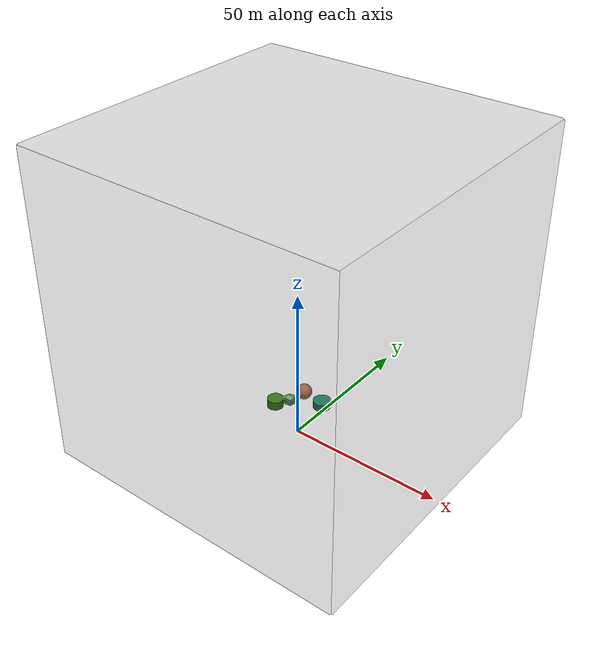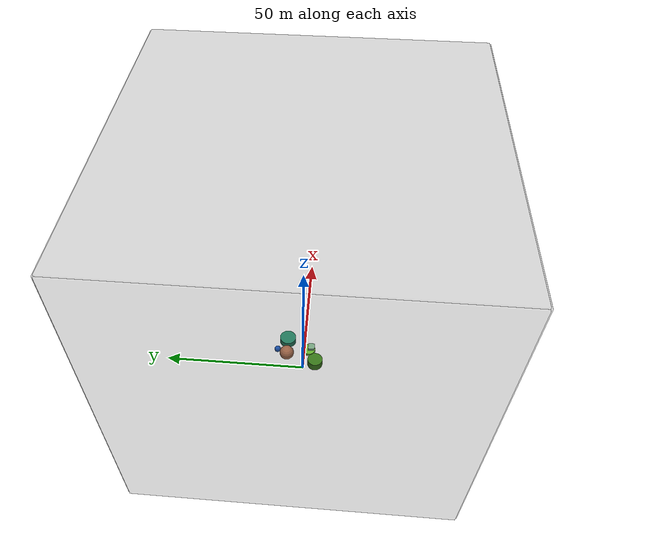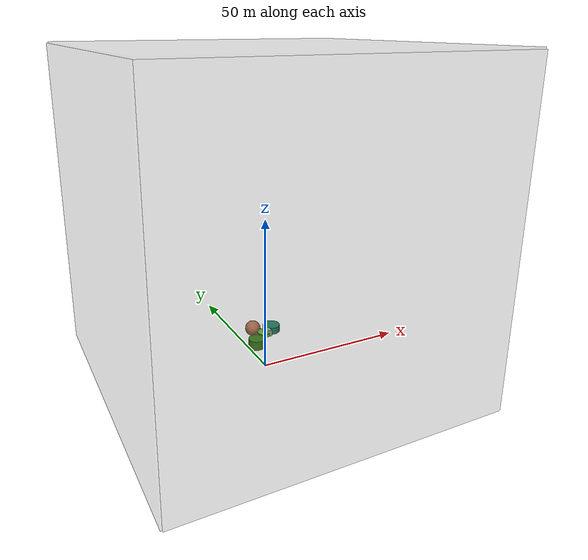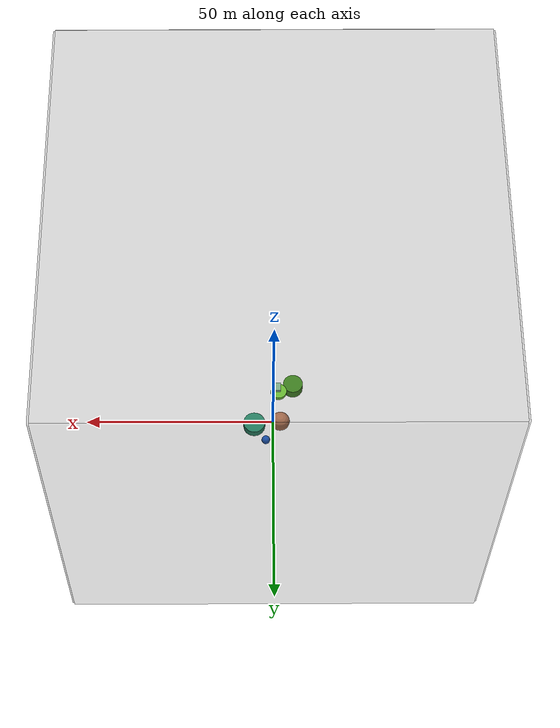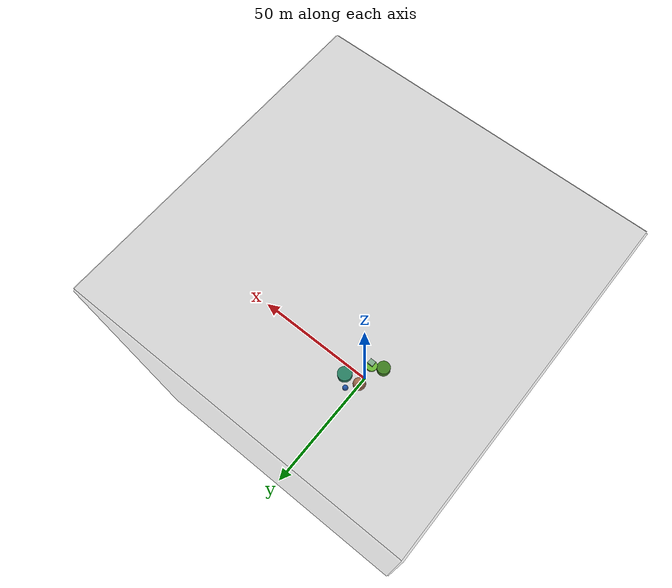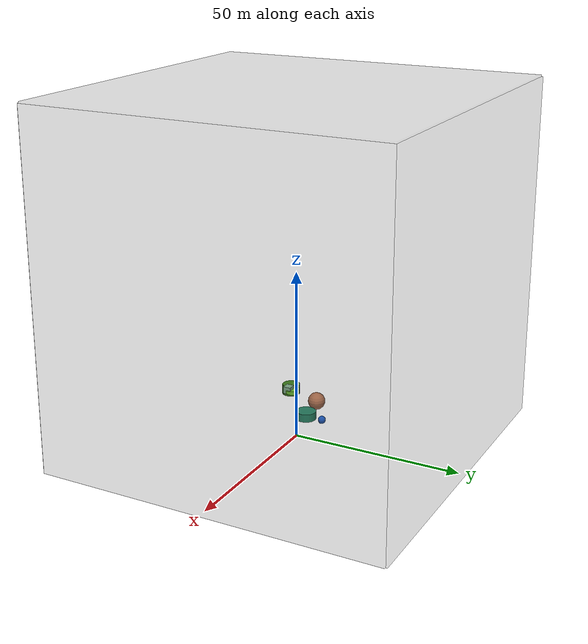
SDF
<!-- seed: 1722609558 -->
<sdf version='1.11'>
  <world name='world_0'>
    <gravity>0 0 -9.8066499999999994</gravity>
    <magnetic_field>5.5644999999999998e-06 2.2875799999999999e-05 -4.2388400000000002e-05</magnetic_field>
    <wind>
      <linear_velocity>2 0 3</linear_velocity>
    </wind>
    <physics default='false' type='ode'>
      <max_step_size>0.001</max_step_size>
      <real_time_factor>1</real_time_factor>
      <max_contacts>20</max_contacts>
    </physics>
    <model name='model_16'>
      <static>false</static>
      <self_collide>false</self_collide>
      <allow_auto_disable>true</allow_auto_disable>
      <enable_wind>false</enable_wind>
      <pose>1.699223706380721 2.7814281604474687 7.7389539978595581 0 0 0</pose>
      <link name='link_48'>
        <pose>-3.1612560174556332 -4.9921185719496481 5.4147100836308857 0 0 0</pose>
        <inertial>
          <pose>0 0 0 0 0 0</pose>
          <mass>1</mass>
          <inertia>
            <ixx>1</ixx>
            <ixy>0</ixy>
            <ixz>0</ixz>
            <iyy>1</iyy>
            <iyz>0</iyz>
            <izz>1</izz>
          </inertia>
        </inertial>
        <enable_wind>false</enable_wind>
        <collision name='collision_48'>
          <pose>0 0 0 0 0 0</pose>
          <geometry>
            <cylinder>
              <radius>2.0926962633981523</radius>
              <length>1.03696756870995</length>
            </cylinder>
          </geometry>
          <surface>
            <contact>
              <collide_bitmask>255</collide_bitmask>
            </contact>
            <friction>
              <ode>
                <mu>1</mu>
                <mu2>1</mu2>
                <slip1>0</slip1>
                <slip2>0</slip2>
                <fdir1>0 0 0</fdir1>
              </ode>
            </friction>
          </surface>
        </collision>
        <visual name='visual_48'>
          <pose>0 0 0 0 0 0</pose>
          <geometry>
            <cylinder>
              <radius>2.0926962633981523</radius>
              <length>1.03696756870995</length>
            </cylinder>
          </geometry>
          <cast_shadows>true</cast_shadows>
          <laser_retro>0</laser_retro>
          <transparency>0</transparency>
          <visibility_flags>4294967295</visibility_flags>
          <material>
            <ambient>0.447855294 0.825310826 0.194243833 1</ambient>
            <diffuse>0.447855294 0.825310826 0.194243833 1</diffuse>
            <specular>0 0 0 1</specular>
            <emissive>0 0 0 1</emissive>
            <render_order>0</render_order>
            <lighting>true</lighting>
            <double_sided>false</double_sided>
            <shader type='pixel'/>
          </material>
        </visual>
      </link>
      <link name='link_49'>
        <pose>-6.9626017738881778 -7.3092043886732183 4.1566790982041368 0 0 0</pose>
        <inertial>
          <pose>0 0 0 0 0 0</pose>
          <mass>1</mass>
          <inertia>
            <ixx>1</ixx>
            <ixy>0</ixy>
            <ixz>0</ixz>
            <iyy>1</iyy>
            <iyz>0</iyz>
            <izz>1</izz>
          </inertia>
        </inertial>
        <enable_wind>false</enable_wind>
        <collision name='collision_49'>
          <pose>0 0 0 0 0 0</pose>
          <geometry>
            <cylinder>
              <radius>2.5495152256821116</radius>
              <length>2.8319096377280335</length>
            </cylinder>
          </geometry>
          <surface>
            <contact>
              <collide_bitmask>255</collide_bitmask>
            </contact>
            <friction>
              <ode>
                <mu>1</mu>
                <mu2>1</mu2>
                <slip1>0</slip1>
                <slip2>0</slip2>
                <fdir1>0 0 0</fdir1>
              </ode>
            </friction>
          </surface>
        </collision>
        <visual name='visual_49'>
          <pose>0 0 0 0 0 0</pose>
          <geometry>
            <cylinder>
              <radius>2.5495152256821116</radius>
              <length>2.8319096377280335</length>
            </cylinder>
          </geometry>
          <cast_shadows>true</cast_shadows>
          <laser_retro>0</laser_retro>
          <transparency>0</transparency>
          <visibility_flags>4294967295</visibility_flags>
          <material>
            <ambient>0.247418702 0.546430528 0.103282824 1</ambient>
            <diffuse>0.247418702 0.546430528 0.103282824 1</diffuse>
            <specular>0 0 0 1</specular>
            <emissive>0 0 0 1</emissive>
            <render_order>0</render_order>
            <lighting>true</lighting>
            <double_sided>false</double_sided>
            <shader type='pixel'/>
          </material>
        </visual>
      </link>
      <link name='link_50'>
        <pose>0.26609227905257526 6.4362399077853176 0.085091062179835086 0 0 0</pose>
        <inertial>
          <pose>0 0 0 0 0 0</pose>
          <mass>1</mass>
          <inertia>
            <ixx>1</ixx>
            <ixy>0</ixy>
            <ixz>0</ixz>
            <iyy>1</iyy>
            <iyz>0</iyz>
            <izz>1</izz>
          </inertia>
        </inertial>
        <enable_wind>false</enable_wind>
        <collision name='collision_50'>
          <pose>0 0 0 0 0 0</pose>
          <geometry>
            <sphere>
              <radius>1.0986246278566048</radius>
            </sphere>
          </geometry>
          <surface>
            <contact>
              <collide_bitmask>255</collide_bitmask>
            </contact>
            <friction>
              <ode>
                <mu>1</mu>
                <mu2>1</mu2>
                <slip1>0</slip1>
                <slip2>0</slip2>
                <fdir1>0 0 0</fdir1>
              </ode>
            </friction>
          </surface>
        </collision>
        <visual name='visual_50'>
          <pose>0 0 0 0 0 0</pose>
          <geometry>
            <sphere>
              <radius>1.0986246278566048</radius>
            </sphere>
          </geometry>
          <cast_shadows>true</cast_shadows>
          <laser_retro>0</laser_retro>
          <transparency>0</transparency>
          <visibility_flags>4294967295</visibility_flags>
          <material>
            <ambient>0.0986984149 0.35306707 0.769007683 1</ambient>
            <diffuse>0.0986984149 0.35306707 0.769007683 1</diffuse>
            <specular>0 0 0 1</specular>
            <emissive>0 0 0 1</emissive>
            <render_order>0</render_order>
            <lighting>true</lighting>
            <double_sided>false</double_sided>
            <shader type='pixel'/>
          </material>
        </visual>
      </link>
      <joint name='joint_32' type='prismatic'>
        <pose>0 0 0 0 0 0</pose>
        <parent>link_50</parent>
        <child>link_49</child>
        <axis>
          <xyz>0.64665177623770997 0.70424144641729913 0.29306222110105751</xyz>
          <limit>
            <lower>-inf</lower>
            <upper>inf</upper>
            <effort>inf</effort>
            <velocity>3.6516442303904819</velocity>
            <stiffness>100000000</stiffness>
            <dissipation>1</dissipation>
          </limit>
          <dynamics>
            <spring_reference>0</spring_reference>
            <spring_stiffness>0</spring_stiffness>
            <damping>0</damping>
            <friction>0</friction>
          </dynamics>
        </axis>
        <axis2>
          <xyz>0.65983624211974512 0.63202708105198613 0.4063962381742714</xyz>
          <limit>
            <lower>-inf</lower>
            <upper>inf</upper>
            <effort>inf</effort>
            <velocity>6.6990958914222398</velocity>
            <stiffness>100000000</stiffness>
            <dissipation>1</dissipation>
          </limit>
          <dynamics>
            <spring_reference>0</spring_reference>
            <spring_stiffness>0</spring_stiffness>
            <damping>0</damping>
            <friction>0</friction>
          </dynamics>
        </axis2>
      </joint>
      <joint name='joint_33' type='gearbox'>
        <pose>0 0 0 0 0 0</pose>
        <parent>link_48</parent>
        <child>link_49</child>
        <axis>
          <xyz>0.39672017245750929 0.74235391219323632 0.53992941558752006</xyz>
          <limit>
            <lower>-inf</lower>
            <upper>inf</upper>
            <effort>inf</effort>
            <velocity>5.7614070854381003</velocity>
            <stiffness>100000000</stiffness>
            <dissipation>1</dissipation>
          </limit>
          <dynamics>
            <spring_reference>0</spring_reference>
            <spring_stiffness>0</spring_stiffness>
            <damping>0</damping>
            <friction>0</friction>
          </dynamics>
        </axis>
        <axis2>
          <xyz>0.013573870083621055 0.93560160999536746 0.35279650993884426</xyz>
          <limit>
            <lower>-inf</lower>
            <upper>inf</upper>
            <effort>inf</effort>
            <velocity>0.71684793785826817</velocity>
            <stiffness>100000000</stiffness>
            <dissipation>1</dissipation>
          </limit>
          <dynamics>
            <spring_reference>0</spring_reference>
            <spring_stiffness>0</spring_stiffness>
            <damping>0</damping>
            <friction>0</friction>
          </dynamics>
        </axis2>
      </joint>
    </model>
    <model name='model_17'>
      <static>false</static>
      <self_collide>true</self_collide>
      <allow_auto_disable>true</allow_auto_disable>
      <enable_wind>false</enable_wind>
      <pose>-2.0007718082716952 -1.2311110920367412 8.3358663065305514 0 0 0</pose>
      <link name='link_51'>
        <pose>1.167396378294443 -1.7381321644885723 5.3112712259797545 0 0 0</pose>
        <inertial>
          <pose>0 0 0 0 0 0</pose>
          <mass>1</mass>
          <inertia>
            <ixx>1</ixx>
            <ixy>0</ixy>
            <ixz>0</ixz>
            <iyy>1</iyy>
            <iyz>0</iyz>
            <izz>1</izz>
          </inertia>
        </inertial>
        <enable_wind>false</enable_wind>
        <collision name='collision_51'>
          <pose>0 0 0 0 0 0</pose>
          <geometry>
            <box>
              <size>2.3135632459515199 2.1433148148867494 2.0237833750499101</size>
            </box>
          </geometry>
          <surface>
            <contact>
              <collide_bitmask>255</collide_bitmask>
            </contact>
            <friction>
              <ode>
                <mu>1</mu>
                <mu2>1</mu2>
                <slip1>0</slip1>
                <slip2>0</slip2>
                <fdir1>0 0 0</fdir1>
              </ode>
            </friction>
          </surface>
        </collision>
        <visual name='visual_51'>
          <pose>0 0 0 0 0 0</pose>
          <geometry>
            <box>
              <size>2.3135632459515199 2.1433148148867494 2.0237833750499101</size>
            </box>
          </geometry>
          <cast_shadows>true</cast_shadows>
          <laser_retro>0</laser_retro>
          <transparency>0</transparency>
          <visibility_flags>4294967295</visibility_flags>
          <material>
            <ambient>0.547810197 0.760187924 0.591483057 1</ambient>
            <diffuse>0.547810197 0.760187924 0.591483057 1</diffuse>
            <specular>0 0 0 1</specular>
            <emissive>0 0 0 1</emissive>
            <render_order>0</render_order>
            <lighting>true</lighting>
            <double_sided>false</double_sided>
            <shader type='pixel'/>
          </material>
        </visual>
      </link>
      <link name='link_52'>
        <pose>6.9776565478708115 6.9738983102209176 1.6170398432563315 0 0 0</pose>
        <inertial>
          <pose>0 0 0 0 0 0</pose>
          <mass>1</mass>
          <inertia>
            <ixx>1</ixx>
            <ixy>0</ixy>
            <ixz>0</ixz>
            <iyy>1</iyy>
            <iyz>0</iyz>
            <izz>1</izz>
          </inertia>
        </inertial>
        <enable_wind>false</enable_wind>
        <collision name='collision_52'>
          <pose>0 0 0 0 0 0</pose>
          <geometry>
            <cylinder>
              <radius>2.8253697310067647</radius>
              <length>2.2982073746710547</length>
            </cylinder>
          </geometry>
          <surface>
            <contact>
              <collide_bitmask>255</collide_bitmask>
            </contact>
            <friction>
              <ode>
                <mu>1</mu>
                <mu2>1</mu2>
                <slip1>0</slip1>
                <slip2>0</slip2>
                <fdir1>0 0 0</fdir1>
              </ode>
            </friction>
          </surface>
        </collision>
        <visual name='visual_52'>
          <pose>0 0 0 0 0 0</pose>
          <geometry>
            <cylinder>
              <radius>2.8253697310067647</radius>
              <length>2.2982073746710547</length>
            </cylinder>
          </geometry>
          <cast_shadows>true</cast_shadows>
          <laser_retro>0</laser_retro>
          <transparency>0</transparency>
          <visibility_flags>4294967295</visibility_flags>
          <material>
            <ambient>0.143895656 0.551764309 0.415210277 1</ambient>
            <diffuse>0.143895656 0.551764309 0.415210277 1</diffuse>
            <specular>0 0 0 1</specular>
            <emissive>0 0 0 1</emissive>
            <render_order>0</render_order>
            <lighting>true</lighting>
            <double_sided>false</double_sided>
            <shader type='pixel'/>
          </material>
        </visual>
      </link>
      <link name='link_53'>
        <pose>0.15489393735881762 6.8112571297550133 3.0715926050515376 0 0 0</pose>
        <inertial>
          <pose>0 0 0 0 0 0</pose>
          <mass>1</mass>
          <inertia>
            <ixx>1</ixx>
            <ixy>0</ixy>
            <ixz>0</ixz>
            <iyy>1</iyy>
            <iyz>0</iyz>
            <izz>1</izz>
          </inertia>
        </inertial>
        <enable_wind>false</enable_wind>
        <collision name='collision_53'>
          <pose>0 0 0 0 0 0</pose>
          <geometry>
            <sphere>
              <radius>2.4569448950268713</radius>
            </sphere>
          </geometry>
          <surface>
            <contact>
              <collide_bitmask>255</collide_bitmask>
            </contact>
            <friction>
              <ode>
                <mu>1</mu>
                <mu2>1</mu2>
                <slip1>0</slip1>
                <slip2>0</slip2>
                <fdir1>0 0 0</fdir1>
              </ode>
            </friction>
          </surface>
        </collision>
        <visual name='visual_53'>
          <pose>0 0 0 0 0 0</pose>
          <geometry>
            <sphere>
              <radius>2.4569448950268713</radius>
            </sphere>
          </geometry>
          <cast_shadows>true</cast_shadows>
          <laser_retro>0</laser_retro>
          <transparency>0</transparency>
          <visibility_flags>4294967295</visibility_flags>
          <material>
            <ambient>0.735791087 0.465050191 0.324001223 1</ambient>
            <diffuse>0.735791087 0.465050191 0.324001223 1</diffuse>
            <specular>0 0 0 1</specular>
            <emissive>0 0 0 1</emissive>
            <render_order>0</render_order>
            <lighting>true</lighting>
            <double_sided>false</double_sided>
            <shader type='pixel'/>
          </material>
        </visual>
      </link>
      <joint name='joint_34' type='universal'>
        <pose>0 0 0 0 0 0</pose>
        <parent>link_52</parent>
        <child>link_53</child>
        <axis>
          <xyz>0.63233387448392986 0.058472814285530979 0.77248611713717641</xyz>
          <limit>
            <lower>-inf</lower>
            <upper>inf</upper>
            <effort>inf</effort>
            <velocity>7.0093523411914322</velocity>
            <stiffness>100000000</stiffness>
            <dissipation>1</dissipation>
          </limit>
          <dynamics>
            <spring_reference>0</spring_reference>
            <spring_stiffness>0</spring_stiffness>
            <damping>0</damping>
            <friction>0</friction>
          </dynamics>
        </axis>
        <axis2>
          <xyz>0.24035204185625961 0.80607479996638576 0.54080894300545534</xyz>
          <limit>
            <lower>-inf</lower>
            <upper>inf</upper>
            <effort>inf</effort>
            <velocity>4.6977540000381248</velocity>
            <stiffness>100000000</stiffness>
            <dissipation>1</dissipation>
          </limit>
          <dynamics>
            <spring_reference>0</spring_reference>
            <spring_stiffness>0</spring_stiffness>
            <damping>0</damping>
            <friction>0</friction>
          </dynamics>
        </axis2>
      </joint>
      <joint name='joint_35' type='gearbox'>
        <pose>0 0 0 0 0 0</pose>
        <parent>link_52</parent>
        <child>link_53</child>
        <axis>
          <xyz>0.54235124248888678 0.74849660184605105 0.38158611976285894</xyz>
          <limit>
            <lower>-inf</lower>
            <upper>inf</upper>
            <effort>inf</effort>
            <velocity>9.4037313722310785</velocity>
            <stiffness>100000000</stiffness>
            <dissipation>1</dissipation>
          </limit>
          <dynamics>
            <spring_reference>0</spring_reference>
            <spring_stiffness>0</spring_stiffness>
            <damping>0</damping>
            <friction>0</friction>
          </dynamics>
        </axis>
        <axis2>
          <xyz>0.70172885186093104 0.71144666640264276 0.037686328164288241</xyz>
          <limit>
            <lower>-inf</lower>
            <upper>inf</upper>
            <effort>inf</effort>
            <velocity>6.8094332913911373</velocity>
            <stiffness>100000000</stiffness>
            <dissipation>1</dissipation>
          </limit>
          <dynamics>
            <spring_reference>0</spring_reference>
            <spring_stiffness>0</spring_stiffness>
            <damping>0</damping>
            <friction>0</friction>
          </dynamics>
        </axis2>
      </joint>
    </model>
    <model name='ground_model'>
      <static>true</static>
      <self_collide>false</self_collide>
      <allow_auto_disable>true</allow_auto_disable>
      <enable_wind>false</enable_wind>
      <pose>0 0 0 0 0 0</pose>
      <link name='ground_link'>
        <pose>0 0 0 0 0 0</pose>
        <inertial>
          <pose>0 0 0 0 0 0</pose>
          <mass>1</mass>
          <inertia>
            <ixx>1</ixx>
            <ixy>0</ixy>
            <ixz>0</ixz>
            <iyy>1</iyy>
            <iyz>0</iyz>
            <izz>1</izz>
          </inertia>
        </inertial>
        <enable_wind>false</enable_wind>
        <collision name='ground_collision'>
          <pose>0 0 0 0 0 0</pose>
          <geometry>
            <plane>
              <normal>0 0 1</normal>
              <size>100 100</size>
            </plane>
          </geometry>
          <surface>
            <contact>
              <collide_bitmask>255</collide_bitmask>
            </contact>
            <friction>
              <ode>
                <mu>1</mu>
                <mu2>1</mu2>
                <slip1>0</slip1>
                <slip2>0</slip2>
                <fdir1>0 0 0</fdir1>
              </ode>
            </friction>
          </surface>
        </collision>
      </link>
    </model>
    <model name='ceiling_model'>
      <static>true</static>
      <self_collide>false</self_collide>
      <allow_auto_disable>true</allow_auto_disable>
      <enable_wind>false</enable_wind>
      <pose>0 0 100 0 0 0</pose>
      <link name='ceiling_link'>
        <pose>0 0 0 0 0 0</pose>
        <inertial>
          <pose>0 0 0 0 0 0</pose>
          <mass>1</mass>
          <inertia>
            <ixx>1</ixx>
            <ixy>0</ixy>
            <ixz>0</ixz>
            <iyy>1</iyy>
            <iyz>0</iyz>
            <izz>1</izz>
          </inertia>
        </inertial>
        <enable_wind>false</enable_wind>
        <collision name='ceiling_collision'>
          <pose>0 0 0 0 0 0</pose>
          <geometry>
            <box>
              <size>102 102 3</size>
            </box>
          </geometry>
          <surface>
            <contact>
              <collide_bitmask>255</collide_bitmask>
            </contact>
            <friction>
              <ode>
                <mu>1</mu>
                <mu2>1</mu2>
                <slip1>0</slip1>
                <slip2>0</slip2>
                <fdir1>0 0 0</fdir1>
              </ode>
            </friction>
          </surface>
        </collision>
        <visual name='ceiling_visual'>
          <pose>0 0 0 0 0 0</pose>
          <geometry>
            <box>
              <size>102 102 3</size>
            </box>
          </geometry>
          <cast_shadows>true</cast_shadows>
          <laser_retro>0</laser_retro>
          <transparency>0</transparency>
          <visibility_flags>4294967295</visibility_flags>
          <material>
            <ambient>0.200000003 0.200000003 0.200000003 0.200000003</ambient>
            <diffuse>0.200000003 0.200000003 0.200000003 0.200000003</diffuse>
            <specular>0 0 0 1</specular>
            <emissive>0 0 0 1</emissive>
            <render_order>0</render_order>
            <lighting>true</lighting>
            <double_sided>false</double_sided>
            <shader type='pixel'/>
          </material>
        </visual>
      </link>
    </model>
    <model name='west_model'>
      <static>true</static>
      <self_collide>false</self_collide>
      <allow_auto_disable>true</allow_auto_disable>
      <enable_wind>false</enable_wind>
      <pose>0 50 50 0 0 0</pose>
      <link name='west_link'>
        <pose>0 0 0 0 0 0</pose>
        <inertial>
          <pose>0 0 0 0 0 0</pose>
          <mass>1</mass>
          <inertia>
            <ixx>1</ixx>
            <ixy>0</ixy>
            <ixz>0</ixz>
            <iyy>1</iyy>
            <iyz>0</iyz>
            <izz>1</izz>
          </inertia>
        </inertial>
        <enable_wind>false</enable_wind>
        <collision name='west_collision'>
          <pose>0 0 0 0 0 0</pose>
          <geometry>
            <box>
              <size>102 3 102</size>
            </box>
          </geometry>
          <surface>
            <contact>
              <collide_bitmask>255</collide_bitmask>
            </contact>
            <friction>
              <ode>
                <mu>1</mu>
                <mu2>1</mu2>
                <slip1>0</slip1>
                <slip2>0</slip2>
                <fdir1>0 0 0</fdir1>
              </ode>
            </friction>
          </surface>
        </collision>
        <visual name='west_visual'>
          <pose>0 0 0 0 0 0</pose>
          <geometry>
            <box>
              <size>102 3 102</size>
            </box>
          </geometry>
          <cast_shadows>true</cast_shadows>
          <laser_retro>0</laser_retro>
          <transparency>0</transparency>
          <visibility_flags>4294967295</visibility_flags>
          <material>
            <ambient>0.200000003 0.200000003 0.200000003 0.200000003</ambient>
            <diffuse>0.200000003 0.200000003 0.200000003 0.200000003</diffuse>
            <specular>0 0 0 1</specular>
            <emissive>0 0 0 1</emissive>
            <render_order>0</render_order>
            <lighting>true</lighting>
            <double_sided>false</double_sided>
            <shader type='pixel'/>
          </material>
        </visual>
      </link>
    </model>
    <model name='east_model'>
      <static>true</static>
      <self_collide>false</self_collide>
      <allow_auto_disable>true</allow_auto_disable>
      <enable_wind>false</enable_wind>
      <pose>0 -50 50 0 0 0</pose>
      <link name='east_link'>
        <pose>0 0 0 0 0 0</pose>
        <inertial>
          <pose>0 0 0 0 0 0</pose>
          <mass>1</mass>
          <inertia>
            <ixx>1</ixx>
            <ixy>0</ixy>
            <ixz>0</ixz>
            <iyy>1</iyy>
            <iyz>0</iyz>
            <izz>1</izz>
          </inertia>
        </inertial>
        <enable_wind>false</enable_wind>
        <collision name='east_collision'>
          <pose>0 0 0 0 0 0</pose>
          <geometry>
            <box>
              <size>102 3 102</size>
            </box>
          </geometry>
          <surface>
            <contact>
              <collide_bitmask>255</collide_bitmask>
            </contact>
            <friction>
              <ode>
                <mu>1</mu>
                <mu2>1</mu2>
                <slip1>0</slip1>
                <slip2>0</slip2>
                <fdir1>0 0 0</fdir1>
              </ode>
            </friction>
          </surface>
        </collision>
        <visual name='east_visual'>
          <pose>0 0 0 0 0 0</pose>
          <geometry>
            <box>
              <size>102 3 102</size>
            </box>
          </geometry>
          <cast_shadows>true</cast_shadows>
          <laser_retro>0</laser_retro>
          <transparency>0</transparency>
          <visibility_flags>4294967295</visibility_flags>
          <material>
            <ambient>0.200000003 0.200000003 0.200000003 0.200000003</ambient>
            <diffuse>0.200000003 0.200000003 0.200000003 0.200000003</diffuse>
            <specular>0 0 0 1</specular>
            <emissive>0 0 0 1</emissive>
            <render_order>0</render_order>
            <lighting>true</lighting>
            <double_sided>false</double_sided>
            <shader type='pixel'/>
          </material>
        </visual>
      </link>
    </model>
    <model name='north_model'>
      <static>true</static>
      <self_collide>false</self_collide>
      <allow_auto_disable>true</allow_auto_disable>
      <enable_wind>false</enable_wind>
      <pose>50 0 50 0 0 0</pose>
      <link name='north_link'>
        <pose>0 0 0 0 0 0</pose>
        <inertial>
          <pose>0 0 0 0 0 0</pose>
          <mass>1</mass>
          <inertia>
            <ixx>1</ixx>
            <ixy>0</ixy>
            <ixz>0</ixz>
            <iyy>1</iyy>
            <iyz>0</iyz>
            <izz>1</izz>
          </inertia>
        </inertial>
        <enable_wind>false</enable_wind>
        <collision name='north_collision'>
          <pose>0 0 0 0 0 0</pose>
          <geometry>
            <box>
              <size>3 102 102</size>
            </box>
          </geometry>
          <surface>
            <contact>
              <collide_bitmask>255</collide_bitmask>
            </contact>
            <friction>
              <ode>
                <mu>1</mu>
                <mu2>1</mu2>
                <slip1>0</slip1>
                <slip2>0</slip2>
                <fdir1>0 0 0</fdir1>
              </ode>
            </friction>
          </surface>
        </collision>
        <visual name='north_visual'>
          <pose>0 0 0 0 0 0</pose>
          <geometry>
            <box>
              <size>3 102 102</size>
            </box>
          </geometry>
          <cast_shadows>true</cast_shadows>
          <laser_retro>0</laser_retro>
          <transparency>0</transparency>
          <visibility_flags>4294967295</visibility_flags>
          <material>
            <ambient>0.200000003 0.200000003 0.200000003 0.200000003</ambient>
            <diffuse>0.200000003 0.200000003 0.200000003 0.200000003</diffuse>
            <specular>0 0 0 1</specular>
            <emissive>0 0 0 1</emissive>
            <render_order>0</render_order>
            <lighting>true</lighting>
            <double_sided>false</double_sided>
            <shader type='pixel'/>
          </material>
        </visual>
      </link>
    </model>
    <model name='south_model'>
      <static>true</static>
      <self_collide>false</self_collide>
      <allow_auto_disable>true</allow_auto_disable>
      <enable_wind>false</enable_wind>
      <pose>-50 0 50 0 0 0</pose>
      <link name='south_link'>
        <pose>0 0 0 0 0 0</pose>
        <inertial>
          <pose>0 0 0 0 0 0</pose>
          <mass>1</mass>
          <inertia>
            <ixx>1</ixx>
            <ixy>0</ixy>
            <ixz>0</ixz>
            <iyy>1</iyy>
            <iyz>0</iyz>
            <izz>1</izz>
          </inertia>
        </inertial>
        <enable_wind>false</enable_wind>
        <collision name='south_collision'>
          <pose>0 0 0 0 0 0</pose>
          <geometry>
            <box>
              <size>3 102 102</size>
            </box>
          </geometry>
          <surface>
            <contact>
              <collide_bitmask>255</collide_bitmask>
            </contact>
            <friction>
              <ode>
                <mu>1</mu>
                <mu2>1</mu2>
                <slip1>0</slip1>
                <slip2>0</slip2>
                <fdir1>0 0 0</fdir1>
              </ode>
            </friction>
          </surface>
        </collision>
        <visual name='south_visual'>
          <pose>0 0 0 0 0 0</pose>
          <geometry>
            <box>
              <size>3 102 102</size>
            </box>
          </geometry>
          <cast_shadows>true</cast_shadows>
          <laser_retro>0</laser_retro>
          <transparency>0</transparency>
          <visibility_flags>4294967295</visibility_flags>
          <material>
            <ambient>0.200000003 0.200000003 0.200000003 0.200000003</ambient>
            <diffuse>0.200000003 0.200000003 0.200000003 0.200000003</diffuse>
            <specular>0 0 0 1</specular>
            <emissive>0 0 0 1</emissive>
            <render_order>0</render_order>
            <lighting>true</lighting>
            <double_sided>false</double_sided>
            <shader type='pixel'/>
          </material>
        </visual>
      </link>
    </model>
    <atmosphere type='adiabatic'>
      <temperature>288.14999999999998</temperature>
      <pressure>101325</pressure>
      <temperature_gradient>-0.0064999999999999997</temperature_gradient>
    </atmosphere>
    <scene>
      <ambient>0.400000006 0.400000006 0.400000006 1</ambient>
      <background>0.699999988 0.699999988 0.699999988 1</background>
      <grid>true</grid>
      <origin_visual>true</origin_visual>
      <shadows>true</shadows>
    </scene>
  </world>
</sdf>
